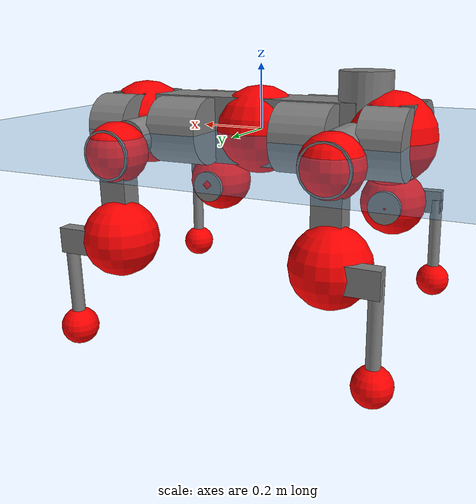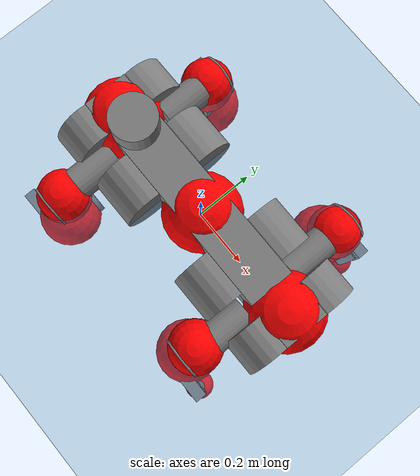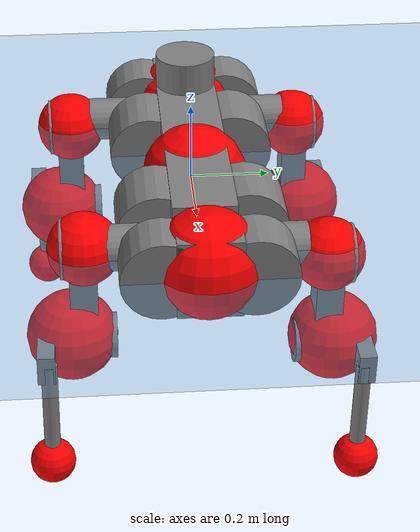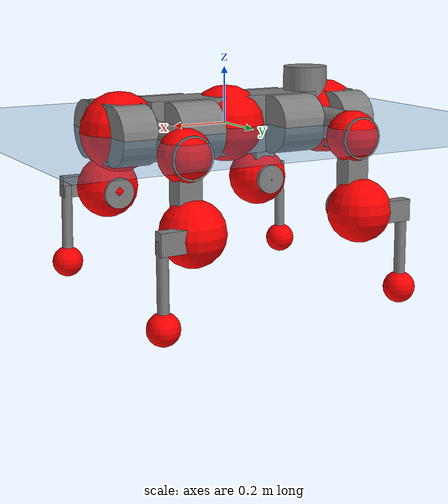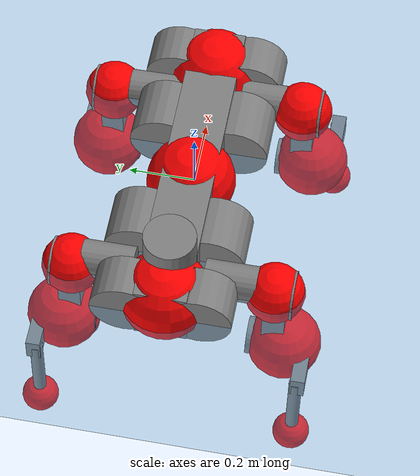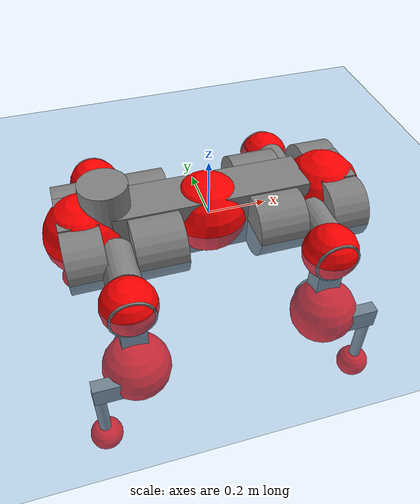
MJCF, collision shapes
<mujoco model="anymal_c">
  <compiler angle="radian" assetdir="assets" balanceinertia="true" inertiafromgeom="false"/>

  <option timestep="0.005" density="1.2" viscosity="2e-05"/>

  <size nkey="1"/>

  <visual>
    <quality shadowsize="8192"/>
    <map shadowclip="0.5"/>
  </visual>

  <default>
    <default class="/">
      <material specular="0" shininess="0.25"/>
      <geom contype="0" conaffinity="0" group="1" solref="-1000 -80"/>
      <site size="0.01 0.005 0.005" group="5"/>
      <general forcelimited="true" forcerange="-80 80" biastype="affine" gainprm="80" biasprm="0 -80 -2"/>
      <default class="anymal_c">
        <joint armature="0.01" damping="0.01" frictionloss="0.1"/>
        <default class="visual">
          <geom type="mesh" group="2"/>
          <default class="visual_zflip"/>
        </default>
        <default class="collision">
          <geom type="cylinder" group="3"/>
          <default class="foot">
            <geom size="0.03 0 0" type="sphere" condim="6" priority="1" friction="0.8 0.02 0.01" solimp="0.015 1 0.03"/>
          </default>
        </default>
      </default>
      <default class="reward_collision_sphere">
        <geom group="5" rgba="1 0 0 1"/>
      </default>
    </default>
  </default>

  <asset>
    <texture type="skybox" colorspace="auto" name="//unnamed_texture_0" builtin="gradient" rgb1="0.95 0.95 0.95" rgb2="0.95 0.95 0.95" width="100" height="600"/>
    <texture type="2d" colorspace="auto" name="texplane" builtin="checker" rgb1="0.345 0.575 0.748" rgb2="0.345 0.575 0.748" markrgb="1 1 1" width="512" height="512"/>
    <texture type="2d" colorspace="linear" name="base" file="base.png"/>
    <texture type="2d" colorspace="linear" name="top_shell" file="top_shell.png"/>
    <texture type="2d" colorspace="linear" name="bottom_shell" file="bottom_shell.png"/>
    <texture type="2d" colorspace="linear" name="remote" file="remote.png"/>
    <texture type="2d" colorspace="linear" name="hatch" file="hatch.png"/>
    <texture type="2d" colorspace="linear" name="handle" file="handle.png"/>
    <texture type="2d" colorspace="linear" name="face" file="face.png"/>
    <texture type="2d" colorspace="linear" name="battery" file="battery.png"/>
    <texture type="2d" colorspace="linear" name="lidar_cage" file="lidar_cage.png"/>
    <texture type="2d" colorspace="linear" name="depth_camera" file="depth_camera.png"/>
    <texture type="2d" colorspace="linear" name="wide_angle_camera" file="wide_angle_camera.png"/>
    <texture type="2d" colorspace="linear" name="lidar" file="lidar.png"/>
    <texture type="2d" colorspace="linear" name="drive" file="drive.png"/>
    <texture type="2d" colorspace="linear" name="hip_l" file="hip_l.png"/>
    <texture type="2d" colorspace="linear" name="shank_l" file="shank_l.png"/>
    <texture type="2d" colorspace="linear" name="foot" file="foot.png"/>
    <texture type="2d" colorspace="linear" name="thigh" file="thigh.png"/>
    <texture type="2d" colorspace="linear" name="shank_r" file="shank_r.png"/>
    <texture type="2d" colorspace="linear" name="hip_r" file="hip_r.png"/>
    <material name="MatPlane" class="/" texture="texplane" texuniform="true" texrepeat="2 2" specular="0.9" shininess="0.5"/>
    <material name="black_plastic" class="/" rgba="0.007 0.007 0.007 1"/>
    <material name="green" class="/" rgba="0.052 0.178 0.033 1"/>
    <material name="red" class="/" rgba="0.178 0.006 0.005 1"/>
    <material name="yellow" class="/" rgba="0.178 0.119 0.006 1"/>
    <material name="lwl" class="/" rgba="0.8 0.8 0.8 1"/>
    <material name="base" class="/" texture="base"/>
    <material name="top_shell" class="/" texture="top_shell"/>
    <material name="bottom_shell" class="/" texture="bottom_shell"/>
    <material name="hip_l" class="/" texture="hip_l"/>
    <material name="thigh" class="/" texture="thigh"/>
    <material name="shank_l" class="/" texture="shank_l"/>
    <material name="foot" class="/" texture="foot"/>
    <material name="hip_r" class="/" texture="hip_r"/>
    <material name="shank" class="/" texture="shank_r"/>
    <material name="hatch" class="/" texture="hatch"/>
    <material name="remote" class="/" texture="remote"/>
    <material name="handle" class="/" texture="handle"/>
    <material name="face" class="/" texture="face"/>
    <material name="depth_camera" class="/" texture="depth_camera"/>
    <material name="wide_angle_camera" class="/" texture="wide_angle_camera"/>
    <material name="battery" class="/" texture="battery"/>
    <material name="lidar_cage" class="/" texture="lidar_cage"/>
    <material name="lidar" class="/" texture="lidar"/>
    <material name="drive" class="/" texture="drive"/>
    <mesh name="base_0" class="/" file="base_0.obj"/>
    <mesh name="base_1" class="/" file="base_1.obj"/>
    <mesh name="base_2" class="/" file="base_2.obj"/>
    <mesh name="base_3" class="/" file="base_3.obj"/>
    <mesh name="base_4" class="/" file="base_4.obj"/>
    <mesh name="base_5" class="/" file="base_5.obj"/>
    <mesh name="top_shell" class="/" file="top_shell.obj"/>
    <mesh name="bottom_shell" class="/" file="bottom_shell.obj"/>
    <mesh name="remote" class="/" file="remote.obj"/>
    <mesh name="handle" class="/" file="handle.obj"/>
    <mesh name="face" class="/" file="face.obj"/>
    <mesh name="wide_angle_camera" class="/" file="wide_angle_camera.obj"/>
    <mesh name="depth_camera" class="/" file="depth_camera.obj"/>
    <mesh name="battery" class="/" file="battery.obj"/>
    <mesh name="lidar_cage" class="/" file="lidar_cage.obj"/>
    <mesh name="lidar" class="/" file="lidar.obj"/>
    <mesh name="drive" class="/" file="drive.obj"/>
    <mesh name="hip_l" class="/" file="hip_l.obj"/>
    <mesh name="thigh" class="/" file="thigh.obj"/>
    <mesh name="shank_l" class="/" file="shank_l.obj"/>
    <mesh name="foot" class="/" file="foot.obj"/>
    <mesh name="hip_r" class="/" file="hip_r.obj"/>
    <mesh name="hatch" class="/" file="hatch.obj"/>
    <mesh name="shank_r" class="/" file="shank_r.obj"/>
  </asset>

  <worldbody>
    <geom name="floor" class="/" size="100 100 0.125" type="plane" group="0" material="MatPlane"/>
    <light name="toplight_shadow" class="/" pos="0 0 5" dir="0.0990148 0.0990148 -0.990148" type="directional" ambient="0.04 0.04 0.04" diffuse="0.55 0.55 0.55" specular="0.12 0.12 0.12"/>
    <light name="toplight_fill" class="/" pos="0 0 5" dir="0.0990148 0.0990148 -0.990148" type="directional" castshadow="false" ambient="0.04 0.04 0.04" diffuse="0.3 0.3 0.3" specular="0.08 0.08 0.08"/>
    <body name="trunk" childclass="anymal_c" pos="-0.00127457 0.00994474 -0.000463248" quat="1 0.000163787 3.6664e-05 0.000102872">
      <inertial pos="-0.00154769 0.0106942 0.0445033" quat="0.546848 0.446043 0.511592 0.49018" mass="28.5078" diaginertia="0.453726 6.71184 0.129697"/>
      <joint name="//unnamed_joint_0" type="free" armature="0" damping="0" frictionloss="0"/>
      <geom name="//unnamed_geom_1" class="visual" material="green" mesh="base_0"/>
      <geom name="//unnamed_geom_2" class="visual" material="yellow" mesh="base_1"/>
      <geom name="//unnamed_geom_3" class="visual" material="red" mesh="base_2"/>
      <geom name="//unnamed_geom_4" class="visual" material="black_plastic" mesh="base_3"/>
      <geom name="//unnamed_geom_5" class="visual" material="lwl" mesh="base_4"/>
      <geom name="//unnamed_geom_6" class="visual" material="base" mesh="base_5"/>
      <geom name="trunk_1" class="collision" size="0.328969 0.0794063 0.102094" type="box"/>
      <geom name="trunk_2" class="collision" size="0.102094 0.0822422" pos="0.199358 0.110923 0" quat="0.707107 0 0.707107 0"/>
      <geom name="trunk_3" class="collision" size="0.102094 0.0822422" pos="-0.199358 0.110923 0" quat="0.707107 0 0.707107 0"/>
      <geom name="trunk_4" class="collision" size="0.102094 0.0822422" pos="0.199358 -0.110923 0" quat="0.707107 0 0.707107 0"/>
      <geom name="trunk_5" class="collision" size="0.102094 0.0822422" pos="-0.199358 -0.110923 0" quat="0.707107 0 0.707107 0"/>
      <geom name="//unnamed_geom_12" class="visual" material="top_shell" mesh="top_shell"/>
      <geom name="//unnamed_geom_13" class="visual" material="bottom_shell" mesh="bottom_shell"/>
      <geom name="//unnamed_geom_14" class="visual" material="remote" mesh="remote"/>
      <geom name="//unnamed_geom_15" class="visual" material="handle" mesh="handle"/>
      <geom name="//unnamed_geom_16" class="visual" pos="0.379926 0 0" quat="1 0 0 0" material="face" mesh="face"/>
      <geom name="trunk_6" class="collision" size="0.0623906 0.0794063 0.102094" pos="0.430339 0 0" type="box"/>
      <geom name="//unnamed_geom_18" class="collision" size="0.102094 0.0623906" pos="0.430339 0.110923 0" quat="0.707107 0 0.707107 0"/>
      <geom name="//unnamed_geom_19" class="collision" size="0.102094 0.0623906" pos="0.430339 -0.110923 0" quat="0.707107 0 0.707107 0"/>
      <geom name="//unnamed_geom_20" class="visual" pos="0.423143 0 -0.0262247" quat="0.965926 0 0.258819 0" material="depth_camera" mesh="depth_camera"/>
      <geom name="//unnamed_geom_21" class="visual" pos="0.470211 0 0.0135018" material="wide_angle_camera" mesh="wide_angle_camera"/>
      <geom name="//unnamed_geom_22" class="visual_zflip" pos="-0.379926 0 0" quat="0 0 0 1" material="face" mesh="face"/>
      <geom name="trunk_7" class="collision" size="0.0623906 0.0794063 0.102094" pos="-0.430339 0 0" quat="0 0 0 1" type="box"/>
      <geom name="//unnamed_geom_24" class="collision" size="0.102094 0.0623906" pos="-0.430339 -0.110923 0" quat="0 -0.707107 0 0.707107"/>
      <geom name="//unnamed_geom_25" class="collision" size="0.102094 0.0623906" pos="-0.430339 0.110923 0" quat="0 -0.707107 0 0.707107"/>
      <geom name="//unnamed_geom_26" class="visual" pos="-0.423143 0 -0.0262247" quat="0 -0.258819 0 0.965926" material="depth_camera" mesh="depth_camera"/>
      <geom name="//unnamed_geom_27" class="visual_zflip" pos="-0.470211 0 0.0135018" quat="0 0 0 1" material="wide_angle_camera" mesh="wide_angle_camera"/>
      <geom name="//unnamed_geom_28" class="visual" material="battery" mesh="battery"/>
      <geom name="//unnamed_geom_29" class="visual" pos="0 0.129925 0.0263123" quat="0.683013 -0.183013 0.183013 0.683013" material="depth_camera" mesh="depth_camera"/>
      <geom name="//unnamed_geom_30" class="visual" pos="0 -0.129925 0.0263123" quat="0.683013 0.183013 0.183013 -0.683013" material="depth_camera" mesh="depth_camera"/>
      <geom name="//unnamed_geom_31" class="visual" pos="-0.333639 0 0.0662914" quat="1 0 0 0" material="lidar_cage" mesh="lidar_cage"/>
      <geom name="trunk_8" class="collision" size="0.0794063 0.0680625" pos="-0.333639 0 0.120407"/>
      <geom name="//unnamed_geom_33" class="visual" pos="-0.333639 0.000262448 0.128254" quat="0.707107 0 0 -0.707107" material="lidar" mesh="lidar"/>
      <geom name="//unnamed_geom_34" class="visual" pos="0.274885 0.164557 1.17765e-08" quat="0.258819 0.965926 0 0" material="drive" mesh="drive"/>
      <geom name="//unnamed_geom_35" class="visual" pos="0.274885 -0.164557 -1.17765e-08" quat="0.258819 -0.965926 0 0" material="drive" mesh="drive"/>
      <geom name="//unnamed_geom_36" class="visual" pos="-0.274885 0.164557 -1.17765e-08" quat="0 0 0.965926 -0.258819" material="drive" mesh="drive"/>
      <geom name="//unnamed_geom_37" class="visual" pos="-0.274885 -0.164557 1.17765e-08" quat="0 0 -0.965926 -0.258819" material="drive" mesh="drive"/>
      <geom name="//unnamed_geom_38" class="visual" pos="0.106324 0 0.0658404" quat="1 0 0 0" material="hatch" mesh="hatch"/>
      <geom name="//unnamed_geom_39" class="reward_collision_sphere" size="0.136125"/>
      <geom name="//unnamed_geom_40" class="reward_collision_sphere" size="0.136125" pos="0.412465 0 0"/>
      <geom name="//unnamed_geom_41" class="reward_collision_sphere" size="0.136125" pos="-0.412465 0 0"/>
      <site name="imu" pos="0.180003 -0.0229376 0.0913839" size="0.0113438"/>
      <camera name="track" pos="0 -3.16923 0" quat="0.707107 0.707107 0 0" mode="trackcom"/>
      <camera name="ego_camera" pos="0.412465 0 -0.0360769" quat="-0.5 -0.5 0.5 0.5"/>
      <body name="LF_HIP" pos="0.266506 0.150645 -0.011904" quat="0.262456 0.964937 0.00342685 -0.00099494">
        <inertial pos="0.0534709 -0.0242177 -0.0138921" quat="-0.129221 0.711752 -0.133077 0.677497" mass="4.51163" diaginertia="0.0037403 0.0538215 0.00189697"/>
        <joint name="LF_HAA" pos="0 0 0" axis="0.999997 0.00201674 -0.00137318" range="-1.0094 0.354132" armature="0.0116903" damping="0.0575285" frictionloss="0.0650797"/>
        <geom name="//unnamed_geom_42" class="visual" pos="0 0.000692756 -0.000113785" quat="0.258819 -0.965926 0 0" material="hip_l" mesh="hip_l"/>
        <geom name="//unnamed_geom_43" class="visual" pos="0.0549037 -0.0750806 -0.0382982" quat="0.183013 -0.683013 0.683013 0.183013" material="drive" mesh="drive"/>
        <geom name="//unnamed_geom_44" class="collision" size="0.0567188 0.0794063" pos="0.0549037 -0.0189517 -0.00622778" quat="-0.353553 -0.612372 0.612372 -0.353553"/>
        <body name="LF_THIGH" pos="0.0560998 -0.129261 -0.0354203" quat="0.18119 -0.682987 0.68454 0.179175">
          <inertial pos="0.0192325 -0.0076098 -0.223144" quat="0.994495 0.0426052 -0.0793588 0.0535492" mass="4.47292" diaginertia="0.0194838 0.302335 0.00262633"/>
          <joint name="LF_HFE" pos="0 0 0" axis="0.9987 -0.0106576 -0.0498408" stiffness="0.00894189" range="-3.26228 2.88837" armature="0.00532644" damping="0.000944992" frictionloss="0.0861878"/>
          <geom name="//unnamed_geom_45" class="visual" pos="-0.013291 -2.09436e-05 0" quat="0.707107 0 0 -0.707107" material="thigh" mesh="thigh"/>
          <geom name="//unnamed_geom_46" class="collision" size="0.0737344 0.045375" pos="0.0366636 0 0" quat="0.5 0.5 -0.5 -0.5"/>
          <geom name="//unnamed_geom_47" class="collision" size="0.0425391 0.0340313 0.160303" pos="0.0274977 0 -0.127454" quat="0.707107 0 0 -0.707107" type="box"/>
          <geom name="//unnamed_geom_48" class="visual" pos="0.091934 0 -0.257048" quat="1 0 0 0" material="drive" mesh="drive"/>
          <geom name="//unnamed_geom_49" class="collision" size="0.0567188 0.0794063" pos="0.0277727 0 -0.257048" quat="0.707107 0 0.707107 0"/>
          <geom name="//unnamed_geom_50" class="reward_collision_sphere" size="0.09075" pos="0.0229147 0 0"/>
          <body name="LF_SHANK" pos="0.0959801 0.0124177 -0.252279" quat="0.999994 0.00196078 -0.00049453 -0.0027235">
            <inertial pos="-0.00324388 -0.0970666 -0.0590219" quat="0.993483 -0.110385 -0.000358706 -0.028389" mass="0.884322" diaginertia="0.00749215 0.078578 0.000791261"/>
            <joint name="LF_KFE" pos="0 0 0" axis="0.999977 -0.00610031 -0.00302952" stiffness="0.00367306" range="-2.87037 3.16422" armature="0.0156813" damping="0.0133284" frictionloss="0.107483"/>
            <geom name="//unnamed_geom_51" class="visual" pos="-0.00433391 -0.0231087 0" quat="0.707107 0 0 -0.707107" material="shank_l" mesh="shank_l"/>
            <geom name="LF_kfe_act" class="collision" size="0.0680625 0.0226875" pos="0.0183318 0 0" quat="0.5 0.5 -0.5 -0.5"/>
            <geom name="//unnamed_geom_53" class="collision" size="0.0652254 0.0382852 0.0215531" pos="0.0183318 -0.0911137 0" quat="0.5 0.5 -0.5 -0.5" type="box"/>
            <geom name="//unnamed_geom_54" class="visual" pos="0.0119625 -0.146814 -0.304823" quat="0.382683 0 0 -0.92388" material="foot" mesh="foot"/>
            <geom name="LF_calf" class="collision" size="0.0198516 0.160233" pos="0.0119615 -0.139367 -0.152412" quat="0.707107 0 0 -0.707107"/>
            <geom name="LF_foot" class="foot" size="0.0305794" pos="0.0119615 -0.139367 -0.28453" quat="0.707107 0 0 -0.707107"/>
            <geom name="//unnamed_geom_57" class="reward_collision_sphere" size="0.113438" pos="-0.0458295 0 0"/>
            <geom name="//unnamed_geom_58" class="reward_collision_sphere" size="0.0567188" pos="0.0119615 -0.139367 -0.28453"/>
            <site name="LF_foot" class="foot" pos="0.0119615 -0.139367 -0.28453" quat="0.707107 0 0 -0.707107" size="0.0113438"/>
          </body>
        </body>
      </body>
      <body name="RF_HIP" pos="0.276561 -0.15854 0.00540738" quat="0.259793 -0.965664 -0.000171073 0.000304675">
        <inertial pos="0.0566947 0.0215748 -0.0103368" quat="0.135587 0.678846 0.12769 0.710267" mass="4.62145" diaginertia="0.00395744 0.0578567 0.00170348"/>
        <joint name="RF_HAA" pos="0 0 0" axis="0.999135 -0.0301064 -0.0286976" stiffness="0.0214572" range="-0.514571 0.709159" armature="0.00946972" damping="0" frictionloss="0.0879706"/>
        <geom name="//unnamed_geom_59" class="visual" pos="0 -0.000692751 -0.000113784" quat="0.258819 0.965926 0 0" material="hip_r" mesh="hip_r"/>
        <geom name="//unnamed_geom_60" class="visual" pos="0.0549038 0.0750806 -0.0382982" quat="0.183013 0.683013 0.683013 -0.183013" material="drive" mesh="drive"/>
        <geom name="//unnamed_geom_61" class="collision" size="0.0567188 0.0794063" pos="0.0549037 0.0189517 -0.00622778" quat="-0.353553 0.612372 0.612372 0.353553"/>
        <body name="RF_THIGH" pos="0.0424938 0.100998 -0.0450661" quat="0.183988 0.682198 0.682792 -0.185876">
          <inertial pos="0.034598 0.014083 -0.221642" quat="0.991956 0.00392514 -0.0538554 0.114486" mass="3.44131" diaginertia="0.0168795 0.260266 0.00229572"/>
          <joint name="RF_HFE" pos="0 0 0" axis="0.999793 -0.0130498 0.0156204" stiffness="0.0234168" range="-2.88451 3.14806" armature="0.0108949" damping="0" frictionloss="0.111269"/>
          <geom name="//unnamed_geom_62" class="visual" pos="-0.013291 -2.09436e-05 0" quat="0.707107 0 0 -0.707107" material="thigh" mesh="thigh"/>
          <geom name="//unnamed_geom_63" class="collision" size="0.0737344 0.045375" pos="0.0366636 0 0" quat="0.5 0.5 0.5 0.5"/>
          <geom name="//unnamed_geom_64" class="collision" size="0.0425391 0.0340313 0.160303" pos="0.0274977 0 -0.127454" quat="0.707107 0 0 0.707107" type="box"/>
          <geom name="//unnamed_geom_65" class="visual" pos="0.091934 0 -0.257048" quat="1 0 0 0" material="drive" mesh="drive"/>
          <geom name="//unnamed_geom_66" class="collision" size="0.0567188 0.0794063" pos="0.0277727 0 -0.257048" quat="0.707107 0 0.707107 0"/>
          <geom name="//unnamed_geom_67" class="reward_collision_sphere" size="0.09075" pos="0.0229147 0 0"/>
          <body name="RF_SHANK" pos="0.104881 3.37826e-05 -0.249268" quat="0.999984 0.00439231 -0.00261181 -0.00239996">
            <inertial pos="0.000195668 0.0983462 -0.0814828" quat="0.990154 0.12521 -0.0142372 0.0609478" mass="0.85307" diaginertia="0.00634367 0.0934899 0.000633098"/>
            <joint name="RF_KFE" pos="0 0 0" axis="0.997609 -0.0668858 0.0174042" stiffness="0.0267488" range="-3.16917 3.16649" armature="0.00476188" damping="0" frictionloss="0.176692"/>
            <geom name="//unnamed_geom_68" class="visual" pos="-0.00433389 0.0231086 0" quat="0.707107 0 0 0.707107" material="shank" mesh="shank_r"/>
            <geom name="RF_kfe_act" class="collision" size="0.0680625 0.0226875" pos="0.0183318 0 0" quat="0.5 0.5 0.5 0.5"/>
            <geom name="//unnamed_geom_70" class="collision" size="0.0652254 0.0382852 0.0215531" pos="0.0183318 0.0911137 0" quat="0.5 0.5 0.5 0.5" type="box"/>
            <geom name="//unnamed_geom_71" class="visual" pos="0.0119604 0.146814 -0.304823" quat="0.382683 0 0 0.92388" material="foot" mesh="foot"/>
            <geom name="RF_calf" class="collision" size="0.0198516 0.160233" pos="0.0119615 0.139367 -0.152412" quat="0.707107 0 0 0.707107"/>
            <geom name="RF_foot" class="foot" size="0.0393803" pos="0.0119615 0.139367 -0.28453" quat="0.707107 0 0 0.707107"/>
            <geom name="//unnamed_geom_74" class="reward_collision_sphere" size="0.113438" pos="-0.0458295 0 0"/>
            <geom name="//unnamed_geom_75" class="reward_collision_sphere" size="0.0567188" pos="0.0119615 0.139367 -0.28453"/>
            <site name="RF_foot" class="foot" pos="0.0119615 0.139367 -0.28453" quat="0.707107 0 0 0.707107" size="0.0113438"/>
          </body>
        </body>
      </body>
      <body name="LH_HIP" pos="-0.275429 0.166133 -0.000103072" quat="-0.000919338 0.000372629 0.965421 -0.260694">
        <inertial pos="0.0534156 0.0348895 -0.0144415" quat="0.118384 0.679609 0.121624 0.71367" mass="3.6085" diaginertia="0.00358619 0.04605 0.00180181"/>
        <joint name="LH_HAA" pos="0 0 0" axis="0.999857 0.0167015 -0.00255851" stiffness="0.0149225" range="-0.545726 0.826528" armature="0.0114496" damping="0.0181371" frictionloss="0.100858"/>
        <geom name="//unnamed_geom_76" class="visual" pos="0 -0.000692751 -0.000113784" quat="-0.258819 -0.965926 0 0" material="hip_r" mesh="hip_r"/>
        <geom name="//unnamed_geom_77" class="visual" pos="0.0549038 0.0750806 -0.0382982" quat="0.183013 0.683013 0.683013 -0.183013" material="drive" mesh="drive"/>
        <geom name="//unnamed_geom_78" class="collision" size="0.0567188 0.0794063" pos="0.0549037 0.0189517 -0.00622778" quat="-0.353553 0.612372 0.612372 0.353553"/>
        <body name="LH_THIGH" pos="0.0627835 0.110982 -0.0249921" quat="0.184148 0.683003 0.682606 -0.183428">
          <inertial pos="0.0297627 0.000586637 -0.208631" quat="0.990776 0.0223259 -0.104723 0.0830572" mass="3.45747" diaginertia="0.0191509 0.261785 0.00236151"/>
          <joint name="LH_HFE" pos="0 0 0" axis="0.99985 0.0046253 0.0167091" stiffness="0.000420861" range="-2.94246 2.98196" armature="0.013896" damping="0.0633053" frictionloss="0.116554"/>
          <geom name="//unnamed_geom_79" class="visual" pos="-0.013291 -2.09436e-05 0" quat="0.707107 0 0 -0.707107" material="thigh" mesh="thigh"/>
          <geom name="//unnamed_geom_80" class="collision" size="0.0737344 0.045375" pos="0.0366636 0 0" quat="0.5 0.5 -0.5 -0.5"/>
          <geom name="//unnamed_geom_81" class="collision" size="0.0425391 0.0340313 0.160303" pos="0.0274977 0 -0.127454" quat="0.707107 0 0 -0.707107" type="box"/>
          <geom name="//unnamed_geom_82" class="visual" pos="0.091934 0 -0.257048" quat="1 0 0 0" material="drive" mesh="drive"/>
          <geom name="//unnamed_geom_83" class="collision" size="0.0567188 0.0794063" pos="0.0277727 0 -0.257048" quat="0.707107 0 0.707107 0"/>
          <geom name="//unnamed_geom_84" class="reward_collision_sphere" size="0.09075" pos="0.0229147 0 0"/>
          <body name="LH_SHANK" pos="0.0994987 0.0142246 -0.258837" quat="0.999999 0.000613178 -0.00134528 4.41375e-05">
            <inertial pos="0.00544455 0.0965956 -0.0714539" quat="0.99297 0.115384 -0.000652029 0.0263814" mass="0.700963" diaginertia="0.00509568 0.0832409 0.000610945"/>
            <joint name="LH_KFE" pos="0 0 0" axis="0.999081 -0.00459063 -0.0426132" stiffness="0.00594247" range="-3.41682 3.33449" armature="0.0118415" damping="0.0377809" frictionloss="0.107566"/>
            <geom name="//unnamed_geom_85" class="visual" pos="-0.00433389 0.0231086 0" quat="-0.707107 0 0 -0.707107" material="shank" mesh="shank_r"/>
            <geom name="LH_kfe_act" class="collision" size="0.0680625 0.0226875" pos="0.0183318 0 0" quat="0.5 0.5 -0.5 -0.5"/>
            <geom name="//unnamed_geom_87" class="collision" size="0.0652254 0.0382852 0.0215531" pos="0.0183318 0.0911137 0" quat="0.5 0.5 -0.5 -0.5" type="box"/>
            <geom name="//unnamed_geom_88" class="visual" pos="0.0119604 0.146814 -0.304823" quat="-0.382683 0 0 -0.92388" material="foot" mesh="foot"/>
            <geom name="LH_calf" class="collision" size="0.0198516 0.160233" pos="0.0119615 0.139367 -0.152412" quat="0.707107 0 0 -0.707107"/>
            <geom name="LH_foot" class="foot" size="0.0278758" pos="0.0119615 0.139367 -0.28453" quat="0.707107 0 0 -0.707107"/>
            <geom name="//unnamed_geom_91" class="reward_collision_sphere" size="0.113438" pos="-0.0458295 0 0"/>
            <geom name="//unnamed_geom_92" class="reward_collision_sphere" size="0.0567188" pos="0.0119615 0.139367 -0.28453"/>
            <site name="LH_foot" class="foot" pos="0.0119615 0.139367 -0.28453" quat="0.707107 0 0 -0.707107" size="0.0113438"/>
          </body>
        </body>
      </body>
      <body name="RH_HIP" pos="-0.278874 -0.16384 0.00324429" quat="0.00511772 -0.00231998 -0.965914 -0.258804">
        <inertial pos="0.0486081 -0.0353145 0.000858464" quat="-0.130933 0.719397 -0.12932 0.669776" mass="3.70662" diaginertia="0.00302802 0.0419685 0.00150719"/>
        <joint name="RH_HAA" pos="0 0 0" axis="0.998314 -0.0490791 -0.0309935" range="-0.698017 0.737483" armature="0.0109329" damping="0.0273163" frictionloss="0.109095"/>
        <geom name="//unnamed_geom_93" class="visual" pos="0 0.000692756 -0.000113785" quat="-0.258819 0.965926 0 0" material="hip_l" mesh="hip_l"/>
        <geom name="//unnamed_geom_94" class="visual" pos="0.0549037 -0.0750806 -0.0382982" quat="-0.183013 0.683013 -0.683013 -0.183013" material="drive" mesh="drive"/>
        <geom name="//unnamed_geom_95" class="collision" size="0.0567188 0.0794063" pos="0.0549037 -0.0189517 -0.00622778" quat="0.353553 0.612372 -0.612372 0.353553"/>
        <body name="RH_THIGH" pos="0.0563276 -0.124125 -0.0429304" quat="-0.178053 0.681639 -0.685923 -0.18214">
          <inertial pos="0.0291196 0.0121829 -0.229145" quat="0.992686 0.00682643 -0.0811247 0.0891403" mass="4.92984" diaginertia="0.0213319 0.329856 0.00272183"/>
          <joint name="RH_HFE" pos="0 0 0" axis="0.998006 -0.0421248 -0.0470105" stiffness="0.0235966" range="-3.17492 2.99795" armature="0.0111689" damping="0.0066407" frictionloss="0.102146"/>
          <geom name="//unnamed_geom_96" class="visual" pos="-0.013291 -2.09436e-05 0" quat="0.707107 0 0 -0.707107" material="thigh" mesh="thigh"/>
          <geom name="//unnamed_geom_97" class="collision" size="0.0737344 0.045375" pos="0.0366636 0 0" quat="0.5 0.5 0.5 0.5"/>
          <geom name="//unnamed_geom_98" class="collision" size="0.0425391 0.0340313 0.160303" pos="0.0274977 0 -0.127454" quat="0.707107 0 0 0.707107" type="box"/>
          <geom name="//unnamed_geom_99" class="visual" pos="0.091934 0 -0.257048" quat="1 0 0 0" material="drive" mesh="drive"/>
          <geom name="//unnamed_geom_100" class="collision" size="0.0567188 0.0794063" pos="0.0277727 0 -0.257048" quat="0.707107 0 0.707107 0"/>
          <geom name="//unnamed_geom_101" class="reward_collision_sphere" size="0.09075" pos="0.0229147 0 0"/>
          <body name="RH_SHANK" pos="0.106968 -0.00287291 -0.259255" quat="0.999996 -0.000704562 0.00284155 -0.000603952">
            <inertial pos="-0.00950213 -0.0965019 -0.0691206" quat="0.992283 -0.1221 0.018265 -0.0114731" mass="0.870875" diaginertia="0.00564752 0.0979612 0.000657247"/>
            <joint name="RH_KFE" pos="0 0 0" axis="0.997973 -0.0626611 0.0111443" stiffness="0.0327805" range="-2.91961 2.88923" armature="0.0181855" damping="0.00251875" frictionloss="0.120051"/>
            <geom name="//unnamed_geom_102" class="visual" pos="-0.00433391 -0.0231087 0" quat="0.707107 0 0 -0.707107" material="shank_l" mesh="shank_l"/>
            <geom name="RH_kfe_act" class="collision" size="0.0680625 0.0226875" pos="0.0183318 0 0" quat="0.5 0.5 0.5 0.5"/>
            <geom name="//unnamed_geom_104" class="collision" size="0.0652254 0.0382852 0.0215531" pos="0.0183318 -0.0911137 0" quat="0.5 0.5 0.5 0.5" type="box"/>
            <geom name="//unnamed_geom_105" class="visual" pos="0.0119625 -0.146814 -0.304823" quat="0.382683 0 0 -0.92388" material="foot" mesh="foot"/>
            <geom name="RH_calf" class="collision" size="0.0198516 0.160233" pos="0.0119615 -0.139367 -0.152412" quat="0.707107 0 0 0.707107"/>
            <geom name="RH_foot" class="foot" size="0.0431925" pos="0.0119615 -0.139367 -0.28453" quat="0.707107 0 0 0.707107"/>
            <geom name="//unnamed_geom_108" class="reward_collision_sphere" size="0.113438" pos="-0.0458295 0 0"/>
            <geom name="//unnamed_geom_109" class="reward_collision_sphere" size="0.0567188" pos="0.0119615 -0.139367 -0.28453"/>
            <site name="RH_foot" class="foot" pos="0.0119615 -0.139367 -0.28453" quat="0.707107 0 0 0.707107" size="0.0113438"/>
          </body>
        </body>
      </body>
    </body>
  </worldbody>

  <contact>
    <pair class="/" geom1="floor" geom2="LF_foot" name="//unnamed_contact_0"/>
    <pair class="/" geom1="floor" geom2="RF_foot" name="//unnamed_contact_1"/>
    <pair class="/" geom1="floor" geom2="LH_foot" name="//unnamed_contact_2"/>
    <pair class="/" geom1="floor" geom2="RH_foot" name="//unnamed_contact_3"/>
  </contact>

  <actuator>
    <general name="LF_HAA" class="/" joint="LF_HAA" forcerange="-41.9328 41.9328" gainprm="62.0792" biasprm="0 -62.0792 -1.9989"/>
    <general name="LF_HFE" class="/" joint="LF_HFE" forcerange="-119.95 119.95" gainprm="62.0792" biasprm="0 -62.0792 -1.9989"/>
    <general name="LF_KFE" class="/" joint="LF_KFE" forcerange="-103.919 103.919" gainprm="62.0792" biasprm="0 -62.0792 -1.9989"/>
    <general name="RF_HAA" class="/" joint="RF_HAA" forcerange="-47.645 47.645" gainprm="62.0792" biasprm="0 -62.0792 -1.9989"/>
    <general name="RF_HFE" class="/" joint="RF_HFE" forcerange="-47.5519 47.5519" gainprm="62.0792" biasprm="0 -62.0792 -1.9989"/>
    <general name="RF_KFE" class="/" joint="RF_KFE" forcerange="-62.1845 62.1845" gainprm="62.0792" biasprm="0 -62.0792 -1.9989"/>
    <general name="LH_HAA" class="/" joint="LH_HAA" forcerange="-100.409 100.409" gainprm="62.0792" biasprm="0 -62.0792 -1.9989"/>
    <general name="LH_HFE" class="/" joint="LH_HFE" forcerange="-87.2205 87.2205" gainprm="62.0792" biasprm="0 -62.0792 -1.9989"/>
    <general name="LH_KFE" class="/" joint="LH_KFE" forcerange="-116.179 116.179" gainprm="62.0792" biasprm="0 -62.0792 -1.9989"/>
    <general name="RH_HAA" class="/" joint="RH_HAA" forcerange="-136.601 136.601" gainprm="62.0792" biasprm="0 -62.0792 -1.9989"/>
    <general name="RH_HFE" class="/" joint="RH_HFE" forcerange="-95.1834 95.1834" gainprm="62.0792" biasprm="0 -62.0792 -1.9989"/>
    <general name="RH_KFE" class="/" joint="RH_KFE" forcerange="-89.3268 89.3268" gainprm="62.0792" biasprm="0 -62.0792 -1.9989"/>
  </actuator>

  <sensor>
    <gyro site="imu" name="imu_angular_velocity"/>
    <velocimeter site="imu" name="imu_linear_velocity"/>
    <framelinvel objtype="site" objname="LF_foot" name="LF_foot_global_linear_velocity"/>
    <framelinvel objtype="site" objname="RF_foot" name="RF_foot_global_linear_velocity"/>
    <framelinvel objtype="site" objname="LH_foot" name="LH_foot_global_linear_velocity"/>
    <framelinvel objtype="site" objname="RH_foot" name="RH_foot_global_linear_velocity"/>
  </sensor>

  <keyframe>
    <key name="home" qpos="0 0 0.55 1 0 0 0 0 0.4 -0.8 0 -0.4 0.8 0 -0.4 0.8 0 0.4 -0.8"/>
  </keyframe>
</mujoco>
